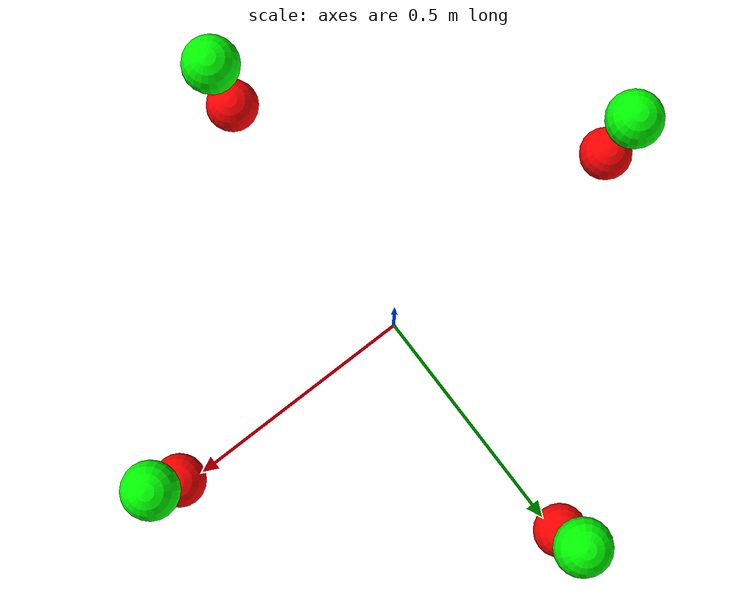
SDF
<sdf version="1.10">
 <world name="robot-arm">
  <physics name="default_physics" type="dart">
   <max_step_size>0.001</max_step_size>
   <real_time_factor>1</real_time_factor>
   <real_time_update_rate>1000</real_time_update_rate>
  </physics>
  <plugin filename="gz-sim-physics-system" name="gz::sim::systems::Physics"/>
  <plugin filename="gz-sim-sensors-system" name="gz::sim::systems::Sensors"/>
  <plugin filename="gz-sim-scene-broadcaster-system" name="gz::sim::systems::SceneBroadcaster"/>
  <plugin filename="gz-sim-user-commands-system" name="gz::sim::systems::UserCommands"/>
  <light type="directional" name="sun">
   <pose>0 0 10 0 0 0</pose>
   <diffuse>0.8 0.8 0.8 1</diffuse>
   <specular>0.2 0.2 0.2 1</specular>
   <attenuation>
    <range>1000</range>
    <constant>0.9</constant>
    <linear>0.01</linear>
    <quadratic>0.001</quadratic>
   </attenuation>
   <direction>-0.5 0.3 -0.9</direction>
  </light>
  <model name="front_down_sphere">
   <static>true</static>
   <pose>0.5 0.0 0.3 0 0 0</pose>
   <link name="link">
    <inertial><mass>1.0</mass></inertial>
    <visual name="visual">
     <geometry><sphere><radius>0.05</radius></sphere></geometry>
     <material><ambient>1.0 0.0 0.0 1.0</ambient></material>
    </visual>
   </link>
  </model>
  <model name="front_up_sphere">
   <static>true</static>
   <pose>0.5 0.0 0.6 0 0 0</pose>
   <link name="link">
    <inertial><mass>1.0</mass></inertial>
    <visual name="visual">
     <geometry><sphere><radius>0.05</radius></sphere></geometry>
     <material><ambient>0 1 0 1</ambient></material>
    </visual>
   </link>
  </model>
  <model name="right_down_sphere">
   <static>true</static>
   <pose>0.0 0.5 0.3 0 0 0</pose>
   <link name="link">
    <inertial><mass>1.0</mass></inertial>
    <visual name="visual">
     <geometry><sphere><radius>0.05</radius></sphere></geometry>
     <material><ambient>1.0 0.0 0.0 1.0</ambient></material>
    </visual>
   </link>
  </model>
  <model name="right_up_sphere">
   <static>true</static>
   <pose>0.0 0.5 0.6 0 0 0</pose>
   <link name="link">
    <inertial><mass>1.0</mass></inertial>
    <visual name="visual">
     <geometry><sphere><radius>0.05</radius></sphere></geometry>
     <material><ambient>0 1 0 1</ambient></material>
    </visual>
   </link>
  </model>
  <model name="basic_down_sphere">
   <static>true</static>
   <pose>-0.5 0.0 0.3 0 0 0</pose>
   <link name="link">
    <inertial><mass>1.0</mass></inertial>
    <visual name="visual">
     <geometry><sphere><radius>0.05</radius></sphere></geometry>
     <material><ambient>1.0 0.0 0.0 1.0</ambient></material>
    </visual>
   </link>
  </model>
  <model name="basic_up_sphere">
   <static>true</static>
   <pose>-0.5 0.0 0.6 0 0 0</pose>
   <link name="link">
    <inertial><mass>1.0</mass></inertial>
    <visual name="visual">
     <geometry><sphere><radius>0.05</radius></sphere></geometry>
     <material><ambient>0 1 0 1</ambient></material>
    </visual>
   </link>
  </model>
  <model name="left_down_sphere">
   <static>true</static>
   <pose>0.0 -0.5 0.3 0 0 0</pose>
   <link name="link">
    <inertial><mass>1.0</mass></inertial>
    <visual name="visual">
     <geometry><sphere><radius>0.05</radius></sphere></geometry>
     <material><ambient>1.0 0.0 0.0 1.0</ambient></material>
    </visual>
   </link>
  </model>
  <model name="left_up_sphere">
   <static>true</static>
   <pose>0.0 -0.5 0.6 0 0 0</pose>
   <link name="link">
    <inertial><mass>1.0</mass></inertial>
    <visual name="visual">
     <geometry><sphere><radius>0.05</radius></sphere></geometry>
     <material><ambient>0 1 0 1</ambient></material>
    </visual>
   </link>
  </model>
 </world>
</sdf>
